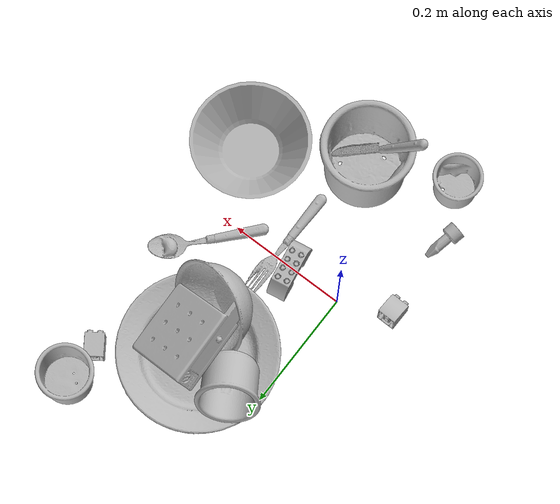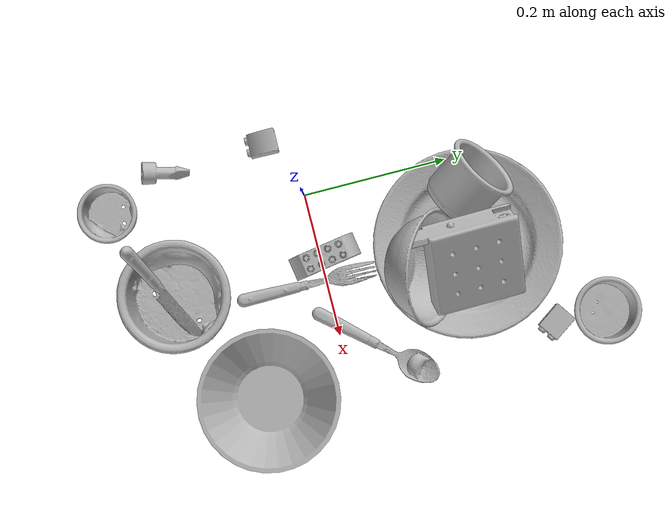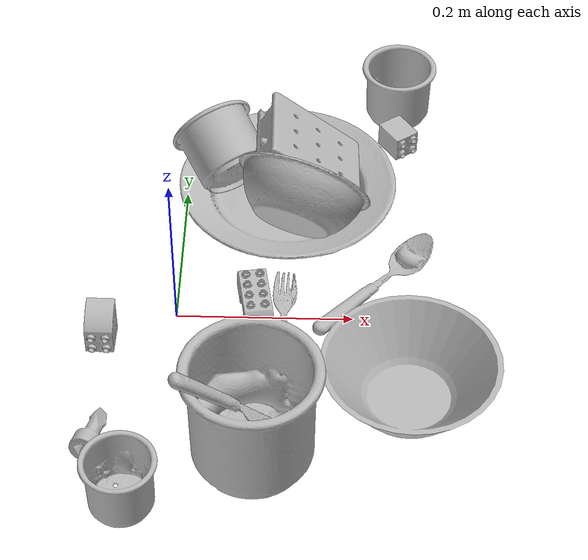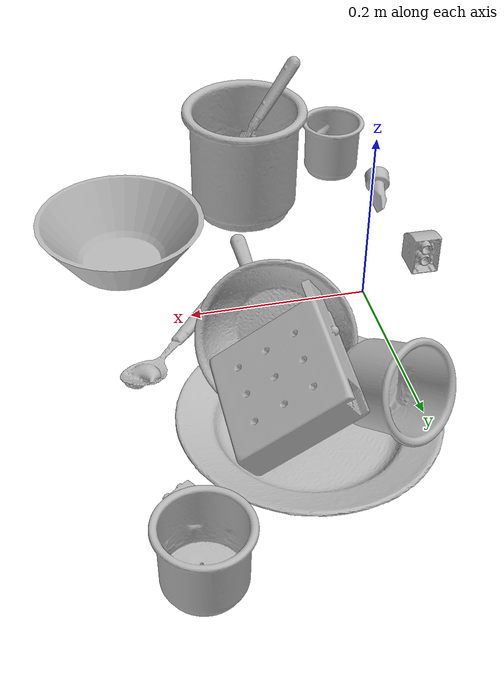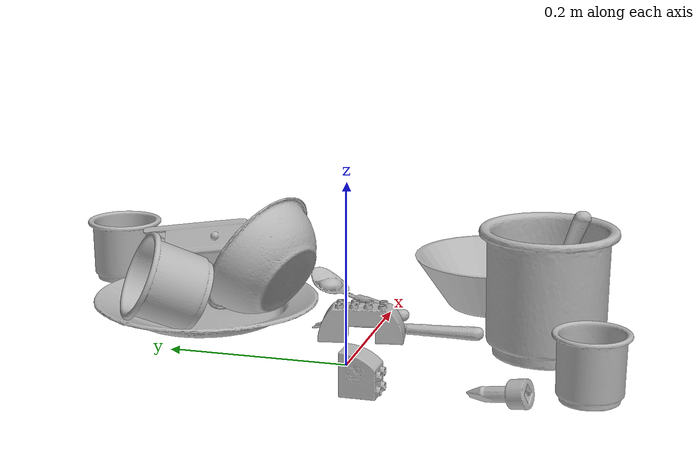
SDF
<sdf version="1.4">
  <world name="default">
    <light name="light1" type="point">
      <pose>0 0 1 0 0 0</pose>
      <diffuse>3 3 3 1</diffuse>
      <specular>3 3 3 1</specular>
    </light>
    <light name="light2" type="point">
      <pose>0 0.5 2 0 0 0</pose>
      <diffuse>1 1 1 1</diffuse>
      <specular>1 1 1 1</specular>
    </light>
    <light name="light3" type="point">
      <pose>0 0.5 2 0 0 0</pose>
      <diffuse>3 3 3 1</diffuse>
      <specular>3 3 3 1</specular>
    </light>
    <scene>
      <ambient>0.7 0.7 0.7</ambient>
    </scene>
    <model name="plate1">
      <link name="link_plate1">
        <collision name="default">
          <geometry>
            <mesh>
              <uri>model://plate/collision_meshes/collision.obj</uri>
              <scale>1.0 1.0 1.0</scale>
            </mesh>
          </geometry>
          <surface>
            <friction>
              <ode>
                <mu>0.5</mu>
                <mu2>0.5</mu2>
              </ode>
            </friction>
          <contact>
        <ode>
            <max_vel>0</max_vel>
            <min_depth>0.0001</min_depth>
            <kp>1e8</kp>
        </ode>
    </contact></surface>
        </collision>
        <visual name="default">
          <geometry>
            <mesh>
              <uri>model://plate/visual_meshes/visual.dae</uri>
              <scale>1.0 1.0 1.0</scale>
            </mesh>
          </geometry>
        </visual>
        <inertial>
          <mass>0.17760059237480164</mass>
          <pose>-0.0006044625188224018 0.0002782586379908025 -0.0010561981471255422 0.0022187804018266454 -0.0032254852757079067 0.45261158451631034</pose>
          <inertia>
            <ixx>0.0008308187</ixx>
            <iyy>0.0008228725</iyy>
            <izz>0.0016249575</izz>
            <ixy>0</ixy>
            <ixz>0</ixz>
            <iyz>0</iyz>
          </inertia>
        </inertial>
      </link>
      <pose>0.12065161764621735 0.2012275755405426 0.013734306208789349 7.943205996334597e-06 3.88855136645102e-05 1.2895527547870347</pose>
    </model>
    <model name="cup1">
      <link name="link_cup1">
        <collision name="default">
          <geometry>
            <mesh>
              <uri>model://e_cups/collision_meshes/collision.obj</uri>
              <scale>2.0 2.0 2.0</scale>
            </mesh>
          </geometry>
          <surface>
            <friction>
              <ode>
                <mu>0.5</mu>
                <mu2>0.5</mu2>
              </ode>
            </friction>
          <contact>
        <ode>
            <max_vel>0</max_vel>
            <min_depth>0.0001</min_depth>
            <kp>1e8</kp>
        </ode>
    </contact></surface>
        </collision>
        <visual name="default">
          <geometry>
            <mesh>
              <uri>model://e_cups/visual_meshes/visual.dae</uri>
              <scale>2.0 2.0 2.0</scale>
            </mesh>
          </geometry>
        </visual>
        <inertial>
          <mass>0.744063675403595</mass>
          <pose>0.002271148143336177 0.005759569350630045 -0.007765938527882099 0.6952380949131286 0.08767384491187986 -0.5235246841726229</pose>
          <inertia>
            <ixx>0.0026243117</ixx>
            <iyy>0.0027427815</iyy>
            <izz>0.0025091455</izz>
            <ixy>0</ixy>
            <ixz>0</ixz>
            <iyz>0</iyz>
          </inertia>
        </inertial>
      </link>
      <pose>0.0946459248661995 -0.1982758343219757 0.07119962573051453 0.0001282986054463115 -0.0001621613487111771 1.1498596956938174</pose>
    </model>
    <model name="silverware1">
      <link name="link_silverware1">
        <collision name="default">
          <geometry>
            <mesh>
              <uri>model://knife/collision_meshes/collision.obj</uri>
              <scale>1.0 1.0 1.0</scale>
            </mesh>
          </geometry>
          <surface>
            <friction>
              <ode>
                <mu>0.5</mu>
                <mu2>0.5</mu2>
              </ode>
            </friction>
          <contact>
        <ode>
            <max_vel>0</max_vel>
            <min_depth>0.0001</min_depth>
            <kp>1e8</kp>
        </ode>
    </contact></surface>
        </collision>
        <visual name="default">
          <geometry>
            <mesh>
              <uri>model://knife/visual_meshes/visual.dae</uri>
              <scale>1.0 1.0 1.0</scale>
            </mesh>
          </geometry>
        </visual>
        <inertial>
          <mass>0.01882243901491165</mass>
          <pose>-0.02378525212407112 0.001527512213215232 5.062019408796914e-05 0.07305335090357784 0.017248422780830937 -0.007409828138098005</pose>
          <inertia>
            <ixx>5.342572e-07</ixx>
            <iyy>7.231275e-05</iyy>
            <izz>7.248483e-05</izz>
            <ixy>0</ixy>
            <ixz>0</ixz>
            <iyz>0</iyz>
          </inertia>
        </inertial>
      </link>
      <pose>0.08585761487483978 -0.21636034548282623 0.09818680584430695 0.060422716190170776 0.8311356543412665 0.39584305319701574</pose>
    </model>
    <model name="silverware2">
      <link name="link_silverware2">
        <collision name="default">
          <geometry>
            <mesh>
              <uri>model://fork/collision_meshes/collision.obj</uri>
              <scale>1.0 1.0 1.0</scale>
            </mesh>
          </geometry>
          <surface>
            <friction>
              <ode>
                <mu>0.5</mu>
                <mu2>0.5</mu2>
              </ode>
            </friction>
          <contact>
        <ode>
            <max_vel>0</max_vel>
            <min_depth>0.0001</min_depth>
            <kp>1e8</kp>
        </ode>
    </contact></surface>
        </collision>
        <visual name="default">
          <geometry>
            <mesh>
              <uri>model://fork/visual_meshes/visual.dae</uri>
              <scale>1.0 1.0 1.0</scale>
            </mesh>
          </geometry>
        </visual>
        <inertial>
          <mass>0.02216319739818573</mass>
          <pose>-0.029570037499070168 0.0004658822435885668 0.0003218860365450382 -0.01355085274048469 -0.010977831838055618 0.014453900749429992</pose>
          <inertia>
            <ixx>7.769453e-07</ixx>
            <iyy>5.7861733e-05</iyy>
            <izz>5.8209254e-05</izz>
            <ixy>0</ixy>
            <ixz>0</ixz>
            <iyz>0</iyz>
          </inertia>
        </inertial>
      </link>
      <pose>0.12090127915143967 -0.027204882353544235 0.007446609437465668 -3.063503897965715 0.00283581466692132 1.5621026024588733</pose>
    </model>
    <model name="silverware3">
      <link name="link_silverware3">
        <collision name="default">
          <geometry>
            <mesh>
              <uri>model://spoon/collision_meshes/collision.obj</uri>
              <scale>1.0 1.0 1.0</scale>
            </mesh>
          </geometry>
          <surface>
            <friction>
              <ode>
                <mu>0.5</mu>
                <mu2>0.5</mu2>
              </ode>
            </friction>
          <contact>
        <ode>
            <max_vel>0</max_vel>
            <min_depth>0.0001</min_depth>
            <kp>1e8</kp>
        </ode>
    </contact></surface>
        </collision>
        <visual name="default">
          <geometry>
            <mesh>
              <uri>model://spoon/visual_meshes/visual.dae</uri>
              <scale>1.0 1.0 1.0</scale>
            </mesh>
          </geometry>
        </visual>
        <inertial>
          <mass>0.0369713120162487</mass>
          <pose>-0.005526314955204725 -0.001603417214937508 -0.0007271651993505657 0.03521850370393077 -0.03906584809093457 0.006150612862082015</pose>
          <inertia>
            <ixx>2.0564048e-06</ixx>
            <iyy>0.00014067463</iyy>
            <izz>0.00014168874</izz>
            <ixy>0</ixy>
            <ixz>0</ixz>
            <iyz>0</iyz>
          </inertia>
        </inertial>
      </link>
      <pose>0.22237414121627808 0.04693499952554703 0.00838525965809822 0.006729269317294205 0.026893000166942398 0.8351580227623512</pose>
    </model>
    <model name="cup3">
      <link name="link_cup3">
        <collision name="default">
          <geometry>
            <mesh>
              <uri>model://h_cups/collision_meshes/collision.obj</uri>
              <scale>1.0 1.0 1.0</scale>
            </mesh>
          </geometry>
          <surface>
            <friction>
              <ode>
                <mu>0.5</mu>
                <mu2>0.5</mu2>
              </ode>
            </friction>
          <contact>
        <ode>
            <max_vel>0</max_vel>
            <min_depth>0.0001</min_depth>
            <kp>1e8</kp>
        </ode>
    </contact></surface>
        </collision>
        <visual name="default">
          <geometry>
            <mesh>
              <uri>model://h_cups/visual_meshes/visual.dae</uri>
              <scale>1.0 1.0 1.0</scale>
            </mesh>
          </geometry>
        </visual>
        <inertial>
          <mass>0.07650958746671677</mass>
          <pose>-2.7029362172470428e-05 0.0002301867789356038 -0.0018405390437692404 -0.02436239906192228 0.06545228304852578 0.1288505673262376</pose>
          <inertia>
            <ixx>9.880857e-05</ixx>
            <iyy>9.7629454e-05</iyy>
            <izz>0.0001036231</izz>
            <ixy>0</ixy>
            <ixz>0</ixz>
            <iyz>0</iyz>
          </inertia>
        </inertial>
      </link>
      <pose>0.25609320402145386 0.3591199815273285 0.037757985293865204 -5.191731861550206e-07 -3.676008429337025e-07 0.8402117122860141</pose>
    </model>
    <model name="cup4">
      <link name="link_cup4">
        <collision name="default">
          <geometry>
            <mesh>
              <uri>model://f_cups/collision_meshes/collision.obj</uri>
              <scale>1.0 1.0 1.0</scale>
            </mesh>
          </geometry>
          <surface>
            <friction>
              <ode>
                <mu>0.5</mu>
                <mu2>0.5</mu2>
              </ode>
            </friction>
          <contact>
        <ode>
            <max_vel>0</max_vel>
            <min_depth>0.0001</min_depth>
            <kp>1e8</kp>
        </ode>
    </contact></surface>
        </collision>
        <visual name="default">
          <geometry>
            <mesh>
              <uri>model://f_cups/visual_meshes/visual.dae</uri>
              <scale>1.0 1.0 1.0</scale>
            </mesh>
          </geometry>
        </visual>
        <inertial>
          <mass>0.06643713265657425</mass>
          <pose>-0.003171468386426568 -0.0006240070797502995 -0.003655537962913513 0.7862285241405351 -0.26079358215919657 -0.18237309734404591</pose>
          <inertia>
            <ixx>6.2452695e-05</ixx>
            <iyy>6.551358e-05</iyy>
            <izz>6.820148e-05</izz>
            <ixy>0</ixy>
            <ixz>0</ixz>
            <iyz>0</iyz>
          </inertia>
        </inertial>
      </link>
      <pose>-0.038017433136701584 -0.26313266158103943 0.0363059937953949 4.005647713408573e-08 8.34150621516257e-08 2.295161752461956</pose>
    </model>
    <model name="cup5">
      <link name="link_cup5">
        <collision name="default">
          <geometry>
            <mesh>
              <uri>model://j_cups/collision_meshes/collision.obj</uri>
              <scale>1.0 1.0 1.0</scale>
            </mesh>
          </geometry>
          <surface>
            <friction>
              <ode>
                <mu>0.5</mu>
                <mu2>0.5</mu2>
              </ode>
            </friction>
          <contact>
        <ode>
            <max_vel>0</max_vel>
            <min_depth>0.0001</min_depth>
            <kp>1e8</kp>
        </ode>
    </contact></surface>
        </collision>
        <visual name="default">
          <geometry>
            <mesh>
              <uri>model://j_cups/visual_meshes/visual.dae</uri>
              <scale>1.0 1.0 1.0</scale>
            </mesh>
          </geometry>
        </visual>
        <inertial>
          <mass>0.12178023159503937</mass>
          <pose>0.0006164865335449576 0.000539897009730339 -0.001347901183180511 0.03030406613159603 0.03757978252187804 0.4386981755119238</pose>
          <inertia>
            <ixx>0.0001788119</ixx>
            <iyy>0.00018067128</iyy>
            <izz>0.00020613305</izz>
            <ixy>0</ixy>
            <ixz>0</ixz>
            <iyz>0</iyz>
          </inertia>
        </inertial>
      </link>
      <pose>0.04436904191970825 0.218135267496109 0.05908217653632164 -1.0670125942478725 0.5732841229416642 0.8485281905116416</pose>
    </model>
    <model name="bowl1">
      <link name="link_bowl1">
        <collision name="default">
          <geometry>
            <mesh>
              <uri>model://bowl/collision_meshes/collision.obj</uri>
              <scale>1.0 1.0 1.0</scale>
            </mesh>
          </geometry>
          <surface>
            <friction>
              <ode>
                <mu>0.5</mu>
                <mu2>0.5</mu2>
              </ode>
            </friction>
          <contact>
        <ode>
            <max_vel>0</max_vel>
            <min_depth>0.0001</min_depth>
            <kp>1e8</kp>
        </ode>
    </contact></surface>
        </collision>
        <visual name="default">
          <geometry>
            <mesh>
              <uri>model://bowl/visual_meshes/visual.dae</uri>
              <scale>1.0 1.0 1.0</scale>
            </mesh>
          </geometry>
        </visual>
        <inertial>
          <mass>0.07745425403118134</mass>
          <pose>0.0002044533030129969 -0.001030205748975277 -0.0008042643312364817 -0.015764104528614948 0.014546761750555465 0.7140386532433999</pose>
          <inertia>
            <ixx>0.00017791858</ixx>
            <iyy>0.0001739432</iyy>
            <izz>0.00029932024</izz>
            <ixy>0</ixy>
            <ixz>0</ixz>
            <iyz>0</iyz>
          </inertia>
        </inertial>
      </link>
      <pose>0.1343030482530594 0.12559235095977783 0.06330729275941849 -0.7729261945843333 -0.8303009658744627 -0.9959950894138714</pose>
    </model>
    <model name="bowl2">
      <link name="link_bowl2">
        <collision name="default">
          <geometry>
            <mesh>
              <uri>model://bowl_a/collision_meshes/collision.obj</uri>
              <scale>1.0 1.0 1.0</scale>
            </mesh>
          </geometry>
          <surface>
            <friction>
              <ode>
                <mu>0.5</mu>
                <mu2>0.5</mu2>
              </ode>
            </friction>
          <contact>
        <ode>
            <max_vel>0</max_vel>
            <min_depth>0.0001</min_depth>
            <kp>1e8</kp>
        </ode>
    </contact></surface>
        </collision>
        <visual name="default">
          <geometry>
            <mesh>
              <uri>model://bowl_a/visual_meshes/visual.dae</uri>
              <scale>1.0 1.0 1.0</scale>
            </mesh>
          </geometry>
        </visual>
        <inertial>
          <mass>0.3088552951812744</mass>
          <pose>0.00027867488097399473 4.730938235297799e-05 -0.0013765291078016162 -0.0009805400563029818 -0.0010938222386440513 -0.19123616665791646</pose>
          <inertia>
            <ixx>0.0008793254</ixx>
            <iyy>0.00088472397</iyy>
            <izz>0.0015639137</izz>
            <ixy>0</ixy>
            <ixz>0</ixz>
            <iyz>0</iyz>
          </inertia>
        </inertial>
      </link>
      <pose>0.26105374097824097 -0.11489785462617874 0.03038301318883896 5.761864308104905e-10 7.318204020427015e-09 1.9883409337442006</pose>
    </model>
    <model name="toy1">
      <link name="link_toy1">
        <collision name="default">
          <geometry>
            <mesh>
              <uri>model://nine_hole_peg_test/collision_meshes/collision.obj</uri>
              <scale>1.0 1.0 1.0</scale>
            </mesh>
          </geometry>
          <surface>
            <friction>
              <ode>
                <mu>0.5</mu>
                <mu2>0.5</mu2>
              </ode>
            </friction>
          <contact>
        <ode>
            <max_vel>0</max_vel>
            <min_depth>0.0001</min_depth>
            <kp>1e8</kp>
        </ode>
    </contact></surface>
        </collision>
        <visual name="default">
          <geometry>
            <mesh>
              <uri>model://nine_hole_peg_test/visual_meshes/visual.dae</uri>
              <scale>1.0 1.0 1.0</scale>
            </mesh>
          </geometry>
        </visual>
        <inertial>
          <mass>0.6997236609458923</mass>
          <pose>-0.004617386497557163 -0.009647613391280174 2.6460686058271676e-05 -0.0014666798725883532 0.0007194177661592421 -0.634241755630697</pose>
          <inertia>
            <ixx>0.001094133</ixx>
            <iyy>0.0010215805</iyy>
            <izz>0.0019172435</izz>
            <ixy>0</ixy>
            <ixz>0</ixz>
            <iyz>0</iyz>
          </inertia>
        </inertial>
      </link>
      <pose>0.14106208086013794 0.19138643145561218 0.0705718845129013 0.18931871924798238 -0.6150788124400797 3.0539493852667463</pose>
    </model>
    <model name="toy2">
      <link name="link_toy2">
        <collision name="default">
          <geometry>
            <mesh>
              <uri>model://b_lego_duplo/collision_meshes/collision.obj</uri>
              <scale>1.0 1.0 1.0</scale>
            </mesh>
          </geometry>
          <surface>
            <friction>
              <ode>
                <mu>0.5</mu>
                <mu2>0.5</mu2>
              </ode>
            </friction>
          <contact>
        <ode>
            <max_vel>0</max_vel>
            <min_depth>0.0001</min_depth>
            <kp>1e8</kp>
        </ode>
    </contact></surface>
        </collision>
        <visual name="default">
          <geometry>
            <mesh>
              <uri>model://b_lego_duplo/visual_meshes/visual.dae</uri>
              <scale>1.0 1.0 1.0</scale>
            </mesh>
          </geometry>
        </visual>
        <inertial>
          <mass>0.036269694566726685</mass>
          <pose>-0.00011053054186049849 -9.152130587608553e-06 0.0019294297089800239 -0.03749458994465856 -0.026354447033388347 0.4518895757464325</pose>
          <inertia>
            <ixx>7.4228647e-06</ixx>
            <iyy>7.4727645e-06</iyy>
            <izz>6.6135317e-06</izz>
            <ixy>0</ixy>
            <ixz>0</ixz>
            <iyz>0</iyz>
          </inertia>
        </inertial>
      </link>
      <pose>0.25661614537239075 0.29103800654411316 0.01615232042968273 -3.1210668117531495 1.562453447087808 2.1981473194951193</pose>
    </model>
    <model name="toy3">
      <link name="link_toy3">
        <collision name="default">
          <geometry>
            <mesh>
              <uri>model://e_lego_duplo/collision_meshes/collision.obj</uri>
              <scale>1.0 1.0 1.0</scale>
            </mesh>
          </geometry>
          <surface>
            <friction>
              <ode>
                <mu>0.5</mu>
                <mu2>0.5</mu2>
              </ode>
            </friction>
          <contact>
        <ode>
            <max_vel>0</max_vel>
            <min_depth>0.0001</min_depth>
            <kp>1e8</kp>
        </ode>
    </contact></surface>
        </collision>
        <visual name="default">
          <geometry>
            <mesh>
              <uri>model://e_lego_duplo/visual_meshes/visual.dae</uri>
              <scale>1.0 1.0 1.0</scale>
            </mesh>
          </geometry>
        </visual>
        <inertial>
          <mass>0.09994293004274368</mass>
          <pose>0.0003256055060774088 0.00023485402925871313 0.0019521453650668263 -0.0225675226805428 -6.825163911406593e-05 -0.00762515763197677</pose>
          <inertia>
            <ixx>2.08414e-05</ixx>
            <iyy>8.553845e-05</iyy>
            <izz>8.329725e-05</izz>
            <ixy>0</ixy>
            <ixz>0</ixz>
            <iyz>0</iyz>
          </inertia>
        </inertial>
      </link>
      <pose>0.08946805447340012 0.006425248458981514 0.02180899679660797 9.866751435685751e-09 -1.208672653076532e-07 -1.406620669387786</pose>
    </model>
    <model name="toy4">
      <link name="link_toy4">
        <collision name="default">
          <geometry>
            <mesh>
              <uri>model://d_lego_duplo/collision_meshes/collision.obj</uri>
              <scale>1.0 1.0 1.0</scale>
            </mesh>
          </geometry>
          <surface>
            <friction>
              <ode>
                <mu>0.5</mu>
                <mu2>0.5</mu2>
              </ode>
            </friction>
          <contact>
        <ode>
            <max_vel>0</max_vel>
            <min_depth>0.0001</min_depth>
            <kp>1e8</kp>
        </ode>
    </contact></surface>
        </collision>
        <visual name="default">
          <geometry>
            <mesh>
              <uri>model://d_lego_duplo/visual_meshes/visual.dae</uri>
              <scale>1.0 1.0 1.0</scale>
            </mesh>
          </geometry>
        </visual>
        <inertial>
          <mass>0.04219998046755791</mass>
          <pose>0.0028305635787546635 0.00016366135969292372 0.0008589813369326293 0.08010947906167593 -0.38355230128712514 0.001029700717632254</pose>
          <inertia>
            <ixx>8.169298e-06</ixx>
            <iyy>1.1594444e-05</iyy>
            <izz>1.1181217e-05</izz>
            <ixy>0</ixy>
            <ixz>0</ixz>
            <iyz>0</iyz>
          </inertia>
        </inertial>
      </link>
      <pose>-0.08172966539859772 -0.03960911184549332 0.024196995422244072 -1.6894814426586349 1.5707953559441228 3.002808446942093</pose>
    </model>
    <model name="toy5">
      <link name="link_toy5">
        <collision name="default">
          <geometry>
            <mesh>
              <uri>model://e_toy_airplane/collision_meshes/collision.obj</uri>
              <scale>1.0 1.0 1.0</scale>
            </mesh>
          </geometry>
          <surface>
            <friction>
              <ode>
                <mu>0.5</mu>
                <mu2>0.5</mu2>
              </ode>
            </friction>
          <contact>
        <ode>
            <max_vel>0</max_vel>
            <min_depth>0.0001</min_depth>
            <kp>1e8</kp>
        </ode>
    </contact></surface>
        </collision>
        <visual name="default">
          <geometry>
            <mesh>
              <uri>model://e_toy_airplane/visual_meshes/visual.dae</uri>
              <scale>1.0 1.0 1.0</scale>
            </mesh>
          </geometry>
        </visual>
        <inertial>
          <mass>0.01083444245159626</mass>
          <pose>0.00011740464105969295 -2.2482989152194932e-05 -0.011187201365828514 0.005518500665833105 0.009228299677984822 0.1504140594290799</pose>
          <inertia>
            <ixx>3.3067965e-06</ixx>
            <iyy>3.2729695e-06</iyy>
            <izz>9.938221e-07</izz>
            <ixy>0</ixy>
            <ixz>0</ixz>
            <iyz>0</iyz>
          </inertia>
        </inertial>
      </link>
      <pose>-0.07634266465902328 -0.1769634634256363 0.01180166658014059 -1.8789530577341023 -0.9040119901721733 0.01807886940080748</pose>
    </model>
  <physics type="ode">
      <max_contacts>50</max_contacts>
      <ode>
        <solver>
          <type>quick</type>
          <iters>75</iters>
        </solver>
        <constraints>
          <contact_max_correcting_vel>0</contact_max_correcting_vel>
          <contact_surface_layer>0</contact_surface_layer>
        </constraints>
      </ode>
    </physics></world>
</sdf>
